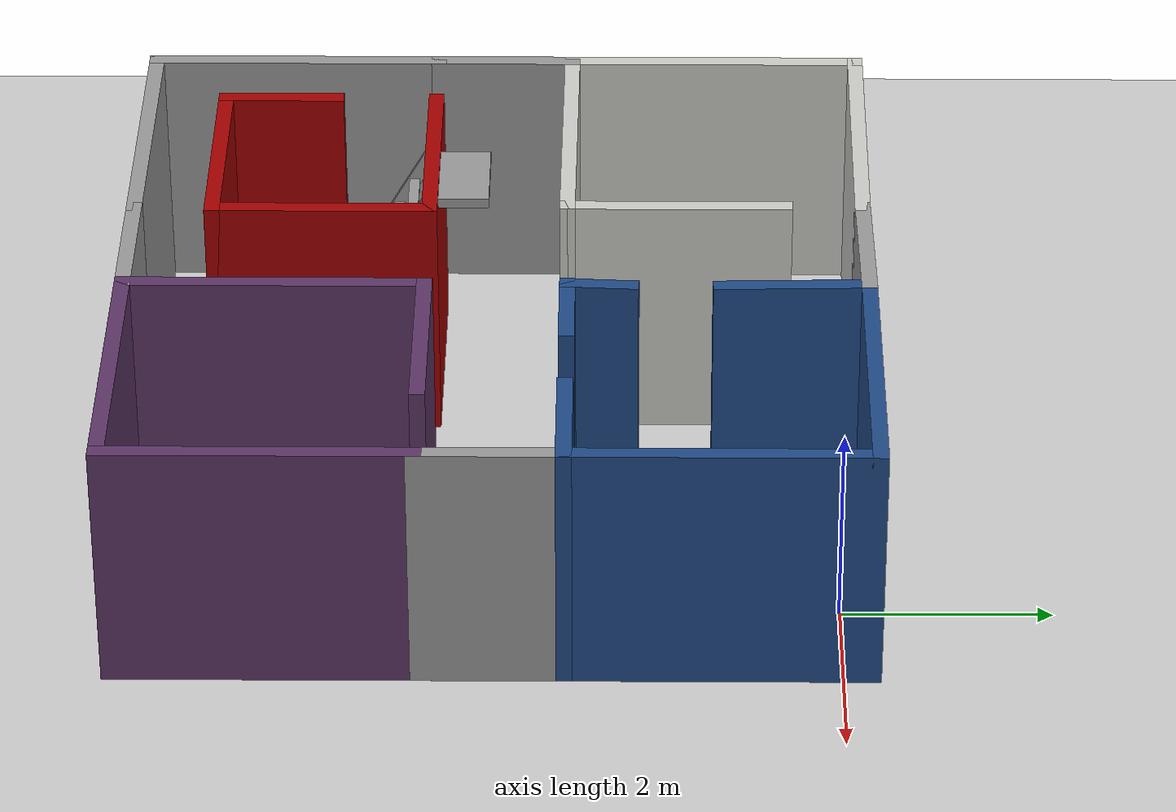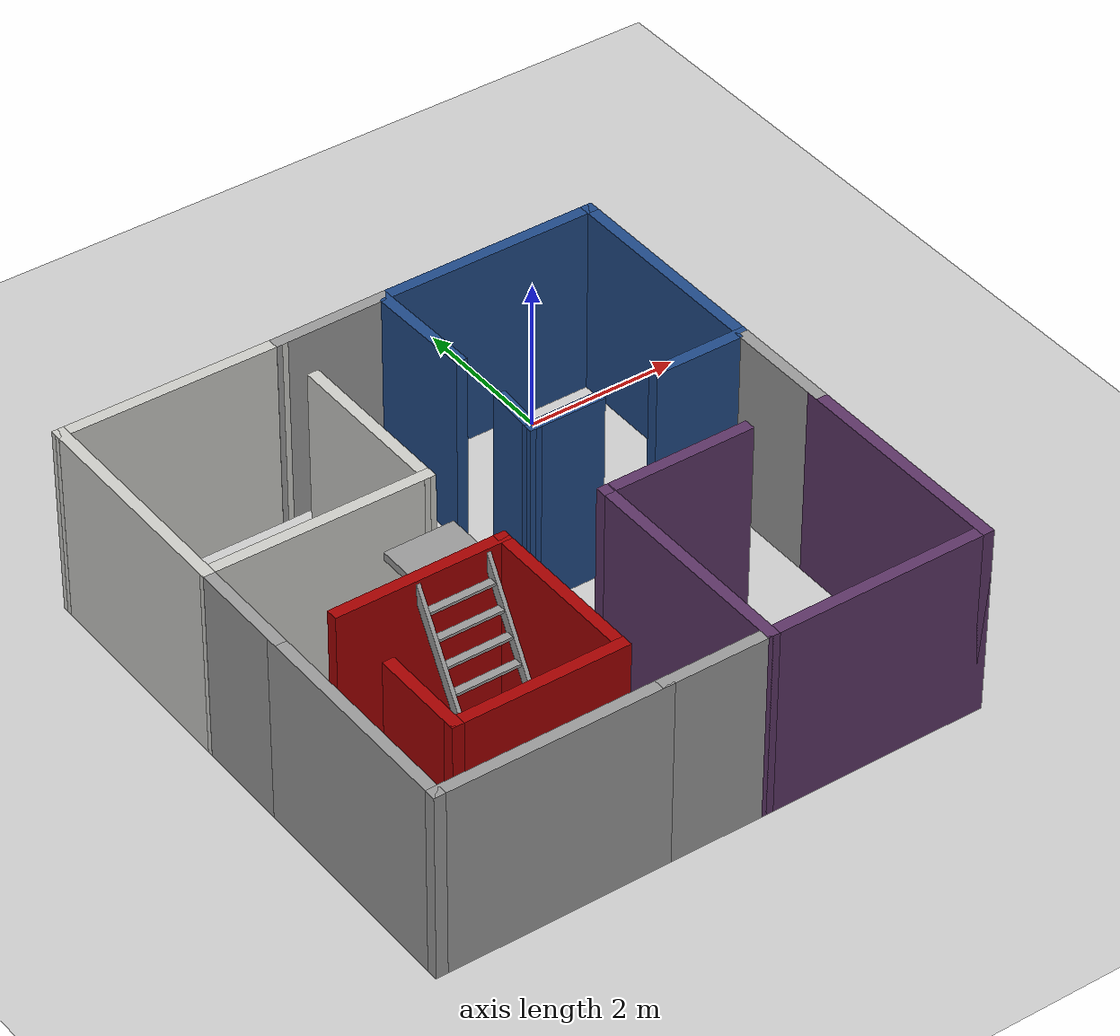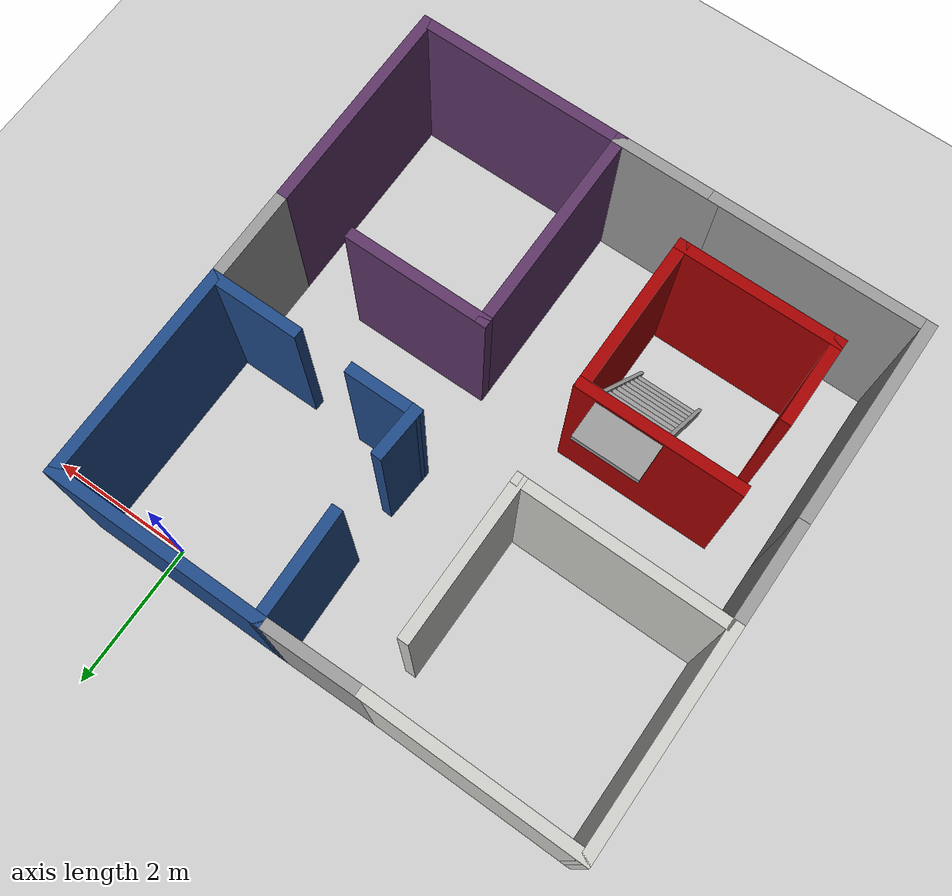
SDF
<sdf version="1.6">
 <world name="default">
  <model name="apartment">
   <link name="Wall_20">
    <pose>-3.52477 2.09918 0 0 0 -1.5708</pose>
    <visual name="Wall_20_Visual">
     <pose>0 0 1.25 0 -0 0</pose>
     <geometry><box><size>3 0.15 2.5</size></box></geometry>
     <material>
      <script><uri>file://media/materials/scripts/gazebo.material</uri><name>Gazebo/CeilingTiled</name></script>
      <ambient>0.435294 0.796078 0.67451 1</ambient>
      <shader type="pixel"/>
     </material>
     <meta><layer>0</layer></meta>
    </visual>
    <collision name="Wall_20_Collision">
     <pose>0 0 1.25 0 -0 0</pose>
     <geometry><box><size>3 0.15 2.5</size></box></geometry>
     <surface>
      <friction>
       <ode><mu>1</mu><mu2>1</mu2><fdir1>0 0 0</fdir1><slip1>0</slip1><slip2>0</slip2></ode>
       <torsional>
        <coefficient>1</coefficient>
        <patch_radius>0</patch_radius>
        <surface_radius>0</surface_radius>
        <use_patch_radius>1</use_patch_radius>
        <ode><slip>0</slip></ode>
       </torsional>
      </friction>
      <bounce><restitution_coefficient>0</restitution_coefficient><threshold>1e+06</threshold></bounce>
      <contact>
       <collide_without_contact>0</collide_without_contact>
       <collide_without_contact_bitmask>1</collide_without_contact_bitmask>
       <collide_bitmask>1</collide_bitmask>
       <ode>
        <soft_cfm>0</soft_cfm>
        <soft_erp>0.2</soft_erp>
        <kp>1e+13</kp>
        <kd>1</kd>
        <max_vel>0.01</max_vel>
        <min_depth>0</min_depth>
       </ode>
       <bullet>
        <split_impulse>1</split_impulse>
        <split_impulse_penetration_threshold>-0.01</split_impulse_penetration_threshold>
        <soft_cfm>0</soft_cfm>
        <soft_erp>0.2</soft_erp>
        <kp>1e+13</kp>
        <kd>1</kd>
       </bullet>
      </contact>
     </surface>
    </collision>
   </link>
   <link name="Wall_21">
    <pose>-2.126 0.665439 0 0 0 -0.006252</pose>
    <visual name="Wall_21_Visual">
     <pose>0 0 1.25 0 -0 0</pose>
     <geometry><box><size>2.94758 0.15 2.5</size></box></geometry>
     <material>
      <script><uri>file://media/materials/scripts/gazebo.material</uri><name>Gazebo/CeilingTiled</name></script>
      <ambient>0.435294 0.796078 0.67451 1</ambient>
      <shader type="pixel"/>
     </material>
     <meta><layer>0</layer></meta>
    </visual>
    <collision name="Wall_21_Collision">
     <pose>0 0 1.25 0 -0 0</pose>
     <geometry><box><size>2.94758 0.15 2.5</size></box></geometry>
     <surface>
      <friction>
       <ode><mu>1</mu><mu2>1</mu2><fdir1>0 0 0</fdir1><slip1>0</slip1><slip2>0</slip2></ode>
       <torsional>
        <coefficient>1</coefficient>
        <patch_radius>0</patch_radius>
        <surface_radius>0</surface_radius>
        <use_patch_radius>1</use_patch_radius>
        <ode><slip>0</slip></ode>
       </torsional>
      </friction>
      <bounce><restitution_coefficient>0</restitution_coefficient><threshold>1e+06</threshold></bounce>
      <contact>
       <collide_without_contact>0</collide_without_contact>
       <collide_without_contact_bitmask>1</collide_without_contact_bitmask>
       <collide_bitmask>1</collide_bitmask>
       <ode>
        <soft_cfm>0</soft_cfm>
        <soft_erp>0.2</soft_erp>
        <kp>1e+13</kp>
        <kd>1</kd>
        <max_vel>0.01</max_vel>
        <min_depth>0</min_depth>
       </ode>
       <bullet>
        <split_impulse>1</split_impulse>
        <split_impulse_penetration_threshold>-0.01</split_impulse_penetration_threshold>
        <soft_cfm>0</soft_cfm>
        <soft_erp>0.2</soft_erp>
        <kp>1e+13</kp>
        <kd>1</kd>
       </bullet>
      </contact>
     </surface>
    </collision>
   </link>
   <link name="Wall_23">
    <pose>-2.126 3.51544 0 0 -0 3.13534</pose>
    <visual name="Wall_23_Visual">
     <pose>0 0 1.25 0 -0 0</pose>
     <geometry><box><size>2.94758 0.15 2.5</size></box></geometry>
     <material>
      <script><uri>file://media/materials/scripts/gazebo.material</uri><name>Gazebo/CeilingTiled</name></script>
      <ambient>0.435294 0.796078 0.67451 1</ambient>
      <shader type="pixel"/>
     </material>
     <meta><layer>0</layer></meta>
    </visual>
    <collision name="Wall_23_Collision">
     <pose>0 0 1.25 0 -0 0</pose>
     <geometry><box><size>2.94758 0.15 2.5</size></box></geometry>
     <surface>
      <friction>
       <ode><mu>1</mu><mu2>1</mu2><fdir1>0 0 0</fdir1><slip1>0</slip1><slip2>0</slip2></ode>
       <torsional>
        <coefficient>1</coefficient>
        <patch_radius>0</patch_radius>
        <surface_radius>0</surface_radius>
        <use_patch_radius>1</use_patch_radius>
        <ode><slip>0</slip></ode>
       </torsional>
      </friction>
      <bounce><restitution_coefficient>0</restitution_coefficient><threshold>1e+06</threshold></bounce>
      <contact>
       <collide_without_contact>0</collide_without_contact>
       <collide_without_contact_bitmask>1</collide_without_contact_bitmask>
       <collide_bitmask>1</collide_bitmask>
       <ode>
        <soft_cfm>0</soft_cfm>
        <soft_erp>0.2</soft_erp>
        <kp>1e+13</kp>
        <kd>1</kd>
        <max_vel>0.01</max_vel>
        <min_depth>0</min_depth>
       </ode>
       <bullet>
        <split_impulse>1</split_impulse>
        <split_impulse_penetration_threshold>-0.01</split_impulse_penetration_threshold>
        <soft_cfm>0</soft_cfm>
        <soft_erp>0.2</soft_erp>
        <kp>1e+13</kp>
        <kd>1</kd>
       </bullet>
      </contact>
     </surface>
    </collision>
   </link>
   <link name="Wall_25">
    <pose>-3.52477 -0.000816 0 0 0 -1.5708</pose>
    <visual name="Wall_25_Visual">
     <pose>0 0 1.25 0 -0 0</pose>
     <geometry><box><size>1.5 0.15 2.5</size></box></geometry>
     <material>
      <script><uri>file://media/materials/scripts/gazebo.material</uri><name>Gazebo/Grey</name></script>
      <ambient>0.729412 0.741176 0.713726 1</ambient>
      <shader type="pixel"/>
     </material>
     <meta><layer>0</layer></meta>
    </visual>
    <collision name="Wall_25_Collision">
     <pose>0 0 1.25 0 -0 0</pose>
     <geometry><box><size>1.5 0.15 2.5</size></box></geometry>
     <surface>
      <friction>
       <ode><mu>1</mu><mu2>1</mu2><fdir1>0 0 0</fdir1><slip1>0</slip1><slip2>0</slip2></ode>
       <torsional>
        <coefficient>1</coefficient>
        <patch_radius>0</patch_radius>
        <surface_radius>0</surface_radius>
        <use_patch_radius>1</use_patch_radius>
        <ode><slip>0</slip></ode>
       </torsional>
      </friction>
      <bounce><restitution_coefficient>0</restitution_coefficient><threshold>1e+06</threshold></bounce>
      <contact>
       <collide_without_contact>0</collide_without_contact>
       <collide_without_contact_bitmask>1</collide_without_contact_bitmask>
       <collide_bitmask>1</collide_bitmask>
       <ode>
        <soft_cfm>0</soft_cfm>
        <soft_erp>0.2</soft_erp>
        <kp>1e+13</kp>
        <kd>1</kd>
        <max_vel>0.01</max_vel>
        <min_depth>0</min_depth>
       </ode>
       <bullet>
        <split_impulse>1</split_impulse>
        <split_impulse_penetration_threshold>-0.01</split_impulse_penetration_threshold>
        <soft_cfm>0</soft_cfm>
        <soft_erp>0.2</soft_erp>
        <kp>1e+13</kp>
        <kd>1</kd>
       </bullet>
      </contact>
     </surface>
    </collision>
   </link>
   <link name="Wall_29">
    <pose>-2.09977 -3.52582 0 0 -0 3.14159</pose>
    <visual name="Wall_29_Visual">
     <pose>0 0 1.25 0 -0 0</pose>
     <geometry><box><size>3 0.15 2.5</size></box></geometry>
     <material>
      <script><uri>file://media/materials/scripts/gazebo.material</uri><name>Gazebo/Grey</name></script>
      <ambient>0.729412 0.741176 0.713726 1</ambient>
      <shader type="pixel"/>
     </material>
     <meta><layer>0</layer></meta>
    </visual>
    <collision name="Wall_29_Collision">
     <pose>0 0 1.25 0 -0 0</pose>
     <geometry><box><size>3 0.15 2.5</size></box></geometry>
     <surface>
      <friction>
       <ode><mu>1</mu><mu2>1</mu2><fdir1>0 0 0</fdir1><slip1>0</slip1><slip2>0</slip2></ode>
       <torsional>
        <coefficient>1</coefficient>
        <patch_radius>0</patch_radius>
        <surface_radius>0</surface_radius>
        <use_patch_radius>1</use_patch_radius>
        <ode><slip>0</slip></ode>
       </torsional>
      </friction>
      <bounce><restitution_coefficient>0</restitution_coefficient><threshold>1e+06</threshold></bounce>
      <contact>
       <collide_without_contact>0</collide_without_contact>
       <collide_without_contact_bitmask>1</collide_without_contact_bitmask>
       <collide_bitmask>1</collide_bitmask>
       <ode>
        <soft_cfm>0</soft_cfm>
        <soft_erp>0.2</soft_erp>
        <kp>1e+13</kp>
        <kd>1</kd>
        <max_vel>0.01</max_vel>
        <min_depth>0</min_depth>
       </ode>
       <bullet>
        <split_impulse>1</split_impulse>
        <split_impulse_penetration_threshold>-0.01</split_impulse_penetration_threshold>
        <soft_cfm>0</soft_cfm>
        <soft_erp>0.2</soft_erp>
        <kp>1e+13</kp>
        <kd>1</kd>
       </bullet>
      </contact>
     </surface>
    </collision>
   </link>
   <link name="Wall_30">
    <pose>-3.52477 -2.10082 0 0 -0 1.5708</pose>
    <visual name="Wall_30_Visual">
     <pose>0 0 1.25 0 -0 0</pose>
     <geometry><box><size>3 0.15 2.5</size></box></geometry>
     <material>
      <script><uri>file://media/materials/scripts/gazebo.material</uri><name>Gazebo/Grey</name></script>
      <ambient>0.729412 0.741176 0.713726 1</ambient>
      <shader type="pixel"/>
     </material>
     <meta><layer>0</layer></meta>
    </visual>
    <collision name="Wall_30_Collision">
     <pose>0 0 1.25 0 -0 0</pose>
     <geometry><box><size>3 0.15 2.5</size></box></geometry>
     <surface>
      <friction>
       <ode><mu>1</mu><mu2>1</mu2><fdir1>0 0 0</fdir1><slip1>0</slip1><slip2>0</slip2></ode>
       <torsional>
        <coefficient>1</coefficient>
        <patch_radius>0</patch_radius>
        <surface_radius>0</surface_radius>
        <use_patch_radius>1</use_patch_radius>
        <ode><slip>0</slip></ode>
       </torsional>
      </friction>
      <bounce><restitution_coefficient>0</restitution_coefficient><threshold>1e+06</threshold></bounce>
      <contact>
       <collide_without_contact>0</collide_without_contact>
       <collide_without_contact_bitmask>1</collide_without_contact_bitmask>
       <collide_bitmask>1</collide_bitmask>
       <ode>
        <soft_cfm>0</soft_cfm>
        <soft_erp>0.2</soft_erp>
        <kp>1e+13</kp>
        <kd>1</kd>
        <max_vel>0.01</max_vel>
        <min_depth>0</min_depth>
       </ode>
       <bullet>
        <split_impulse>1</split_impulse>
        <split_impulse_penetration_threshold>-0.01</split_impulse_penetration_threshold>
        <soft_cfm>0</soft_cfm>
        <soft_erp>0.2</soft_erp>
        <kp>1e+13</kp>
        <kd>1</kd>
       </bullet>
      </contact>
     </surface>
    </collision>
   </link>
   <link name="Wall_32">
    <pose>-0.026002 3.51544 0 0 -0 0.01247</pose>
    <visual name="Wall_32_Visual">
     <pose>0 0 1.25 0 -0 0</pose>
     <geometry><box><size>1.55258 0.15 2.5</size></box></geometry>
     <material>
      <script><uri>file://media/materials/scripts/gazebo.material</uri><name>Gazebo/Grey</name></script>
      <ambient>0.729412 0.741176 0.713726 1</ambient>
      <shader type="pixel"/>
     </material>
     <meta><layer>0</layer></meta>
    </visual>
    <collision name="Wall_32_Collision">
     <pose>0 0 1.25 0 -0 0</pose>
     <geometry><box><size>1.55258 0.15 2.5</size></box></geometry>
     <surface>
      <friction>
       <ode><mu>1</mu><mu2>1</mu2><fdir1>0 0 0</fdir1><slip1>0</slip1><slip2>0</slip2></ode>
       <torsional>
        <coefficient>1</coefficient>
        <patch_radius>0</patch_radius>
        <surface_radius>0</surface_radius>
        <use_patch_radius>1</use_patch_radius>
        <ode><slip>0</slip></ode>
       </torsional>
      </friction>
      <bounce><restitution_coefficient>0</restitution_coefficient><threshold>1e+06</threshold></bounce>
      <contact>
       <collide_without_contact>0</collide_without_contact>
       <collide_without_contact_bitmask>1</collide_without_contact_bitmask>
       <collide_bitmask>1</collide_bitmask>
       <ode>
        <soft_cfm>0</soft_cfm>
        <soft_erp>0.2</soft_erp>
        <kp>1e+13</kp>
        <kd>1</kd>
        <max_vel>0.01</max_vel>
        <min_depth>0</min_depth>
       </ode>
       <bullet>
        <split_impulse>1</split_impulse>
        <split_impulse_penetration_threshold>-0.01</split_impulse_penetration_threshold>
        <soft_cfm>0</soft_cfm>
        <soft_erp>0.2</soft_erp>
        <kp>1e+13</kp>
        <kd>1</kd>
       </bullet>
      </contact>
     </surface>
    </collision>
   </link>
   <link name="Wall_33">
    <pose>2.10023 3.52418 0 0 -0 0</pose>
    <visual name="Wall_33_Visual">
     <pose>0 0 1.25 0 -0 0</pose>
     <geometry><box><size>3 0.15 2.5</size></box></geometry>
     <material>
      <script><uri>file://media/materials/scripts/gazebo.material</uri><name>Gazebo/Grey</name></script>
      <ambient>0.12549 0.290196 0.529412 1</ambient>
      <shader type="pixel"/>
     </material>
     <meta><layer>0</layer></meta>
    </visual>
    <collision name="Wall_33_Collision">
     <pose>0 0 1.25 0 -0 0</pose>
     <geometry><box><size>3 0.15 2.5</size></box></geometry>
     <surface>
      <friction>
       <ode><mu>1</mu><mu2>1</mu2><fdir1>0 0 0</fdir1><slip1>0</slip1><slip2>0</slip2></ode>
       <torsional>
        <coefficient>1</coefficient>
        <patch_radius>0</patch_radius>
        <surface_radius>0</surface_radius>
        <use_patch_radius>1</use_patch_radius>
        <ode><slip>0</slip></ode>
       </torsional>
      </friction>
      <bounce><restitution_coefficient>0</restitution_coefficient><threshold>1e+06</threshold></bounce>
      <contact>
       <collide_without_contact>0</collide_without_contact>
       <collide_without_contact_bitmask>1</collide_without_contact_bitmask>
       <collide_bitmask>1</collide_bitmask>
       <ode>
        <soft_cfm>0</soft_cfm>
        <soft_erp>0.2</soft_erp>
        <kp>1e+13</kp>
        <kd>1</kd>
        <max_vel>0.01</max_vel>
        <min_depth>0</min_depth>
       </ode>
       <bullet>
        <split_impulse>1</split_impulse>
        <split_impulse_penetration_threshold>-0.01</split_impulse_penetration_threshold>
        <soft_cfm>0</soft_cfm>
        <soft_erp>0.2</soft_erp>
        <kp>1e+13</kp>
        <kd>1</kd>
       </bullet>
      </contact>
     </surface>
    </collision>
   </link>
   <link name="Wall_34">
    <pose>3.52523 2.09918 0 0 0 -1.5708</pose>
    <visual name="Wall_34_Visual">
     <pose>0 0 1.25 0 -0 0</pose>
     <geometry><box><size>3 0.15 2.5</size></box></geometry>
     <material>
      <script><uri>file://media/materials/scripts/gazebo.material</uri><name>Gazebo/Grey</name></script>
      <ambient>0.12549 0.290196 0.529412 1</ambient>
      <shader type="pixel"/>
     </material>
     <meta><layer>0</layer></meta>
    </visual>
    <collision name="Wall_34_Collision">
     <pose>0 0 1.25 0 -0 0</pose>
     <geometry><box><size>3 0.15 2.5</size></box></geometry>
     <surface>
      <friction>
       <ode><mu>1</mu><mu2>1</mu2><fdir1>0 0 0</fdir1><slip1>0</slip1><slip2>0</slip2></ode>
       <torsional>
        <coefficient>1</coefficient>
        <patch_radius>0</patch_radius>
        <surface_radius>0</surface_radius>
        <use_patch_radius>1</use_patch_radius>
        <ode><slip>0</slip></ode>
       </torsional>
      </friction>
      <bounce><restitution_coefficient>0</restitution_coefficient><threshold>1e+06</threshold></bounce>
      <contact>
       <collide_without_contact>0</collide_without_contact>
       <collide_without_contact_bitmask>1</collide_without_contact_bitmask>
       <collide_bitmask>1</collide_bitmask>
       <ode>
        <soft_cfm>0</soft_cfm>
        <soft_erp>0.2</soft_erp>
        <kp>1e+13</kp>
        <kd>1</kd>
        <max_vel>0.01</max_vel>
        <min_depth>0</min_depth>
       </ode>
       <bullet>
        <split_impulse>1</split_impulse>
        <split_impulse_penetration_threshold>-0.01</split_impulse_penetration_threshold>
        <soft_cfm>0</soft_cfm>
        <soft_erp>0.2</soft_erp>
        <kp>1e+13</kp>
        <kd>1</kd>
       </bullet>
      </contact>
     </surface>
    </collision>
   </link>
   <link name="Wall_38">
    <pose>0.000234 -3.52582 0 0 -0 0</pose>
    <visual name="Wall_38_Visual">
     <pose>0 0 1.25 0 -0 0</pose>
     <geometry><box><size>1.5 0.15 2.5</size></box></geometry>
     <material>
      <script><uri>file://media/materials/scripts/gazebo.material</uri><name>Gazebo/Grey</name></script>
      <ambient>0.729412 0.741176 0.713726 1</ambient>
      <shader type="pixel"/>
     </material>
     <meta><layer>0</layer></meta>
    </visual>
    <collision name="Wall_38_Collision">
     <pose>0 0 1.25 0 -0 0</pose>
     <geometry><box><size>1.5 0.15 2.5</size></box></geometry>
     <surface>
      <friction>
       <ode><mu>1</mu><mu2>1</mu2><fdir1>0 0 0</fdir1><slip1>0</slip1><slip2>0</slip2></ode>
       <torsional>
        <coefficient>1</coefficient>
        <patch_radius>0</patch_radius>
        <surface_radius>0</surface_radius>
        <use_patch_radius>1</use_patch_radius>
        <ode><slip>0</slip></ode>
       </torsional>
      </friction>
      <bounce><restitution_coefficient>0</restitution_coefficient><threshold>1e+06</threshold></bounce>
      <contact>
       <collide_without_contact>0</collide_without_contact>
       <collide_without_contact_bitmask>1</collide_without_contact_bitmask>
       <collide_bitmask>1</collide_bitmask>
       <ode>
        <soft_cfm>0</soft_cfm>
        <soft_erp>0.2</soft_erp>
        <kp>1e+13</kp>
        <kd>1</kd>
        <max_vel>0.01</max_vel>
        <min_depth>0</min_depth>
       </ode>
       <bullet>
        <split_impulse>1</split_impulse>
        <split_impulse_penetration_threshold>-0.01</split_impulse_penetration_threshold>
        <soft_cfm>0</soft_cfm>
        <soft_erp>0.2</soft_erp>
        <kp>1e+13</kp>
        <kd>1</kd>
       </bullet>
      </contact>
     </surface>
    </collision>
   </link>
   <link name="Wall_39">
    <pose>2.10023 -3.52582 0 0 -0 0</pose>
    <visual name="Wall_39_Visual">
     <pose>0 0 1.25 0 -0 0</pose>
     <geometry><box><size>3 0.15 2.5</size></box></geometry>
     <material>
      <script><uri>file://media/materials/scripts/gazebo.material</uri><name>Gazebo/Grey</name></script>
      <ambient>0.360784 0.207843 0.4 1</ambient>
      <shader type="pixel"/>
     </material>
     <meta><layer>0</layer></meta>
    </visual>
    <collision name="Wall_39_Collision">
     <pose>0 0 1.25 0 -0 0</pose>
     <geometry><box><size>3 0.15 2.5</size></box></geometry>
     <surface>
      <friction>
       <ode><mu>1</mu><mu2>1</mu2><fdir1>0 0 0</fdir1><slip1>0</slip1><slip2>0</slip2></ode>
       <torsional>
        <coefficient>1</coefficient>
        <patch_radius>0</patch_radius>
        <surface_radius>0</surface_radius>
        <use_patch_radius>1</use_patch_radius>
        <ode><slip>0</slip></ode>
       </torsional>
      </friction>
      <bounce><restitution_coefficient>0</restitution_coefficient><threshold>1e+06</threshold></bounce>
      <contact>
       <collide_without_contact>0</collide_without_contact>
       <collide_without_contact_bitmask>1</collide_without_contact_bitmask>
       <collide_bitmask>1</collide_bitmask>
       <ode>
        <soft_cfm>0</soft_cfm>
        <soft_erp>0.2</soft_erp>
        <kp>1e+13</kp>
        <kd>1</kd>
        <max_vel>0.01</max_vel>
        <min_depth>0</min_depth>
       </ode>
       <bullet>
        <split_impulse>1</split_impulse>
        <split_impulse_penetration_threshold>-0.01</split_impulse_penetration_threshold>
        <soft_cfm>0</soft_cfm>
        <soft_erp>0.2</soft_erp>
        <kp>1e+13</kp>
        <kd>1</kd>
       </bullet>
      </contact>
     </surface>
    </collision>
   </link>
   <link name="Wall_40">
    <pose>3.52523 -2.10082 0 0 -0 1.5708</pose>
    <visual name="Wall_40_Visual">
     <pose>0 0 1.25 0 -0 0</pose>
     <geometry><box><size>3 0.15 2.5</size></box></geometry>
     <material>
      <script><uri>file://media/materials/scripts/gazebo.material</uri><name>Gazebo/Grey</name></script>
      <ambient>0.360784 0.207843 0.4 1</ambient>
      <shader type="pixel"/>
     </material>
     <meta><layer>0</layer></meta>
    </visual>
    <collision name="Wall_40_Collision">
     <pose>0 0 1.25 0 -0 0</pose>
     <geometry><box><size>3 0.15 2.5</size></box></geometry>
     <surface>
      <friction>
       <ode><mu>1</mu><mu2>1</mu2><fdir1>0 0 0</fdir1><slip1>0</slip1><slip2>0</slip2></ode>
       <torsional>
        <coefficient>1</coefficient>
        <patch_radius>0</patch_radius>
        <surface_radius>0</surface_radius>
        <use_patch_radius>1</use_patch_radius>
        <ode><slip>0</slip></ode>
       </torsional>
      </friction>
      <bounce><restitution_coefficient>0</restitution_coefficient><threshold>1e+06</threshold></bounce>
      <contact>
       <collide_without_contact>0</collide_without_contact>
       <collide_without_contact_bitmask>1</collide_without_contact_bitmask>
       <collide_bitmask>1</collide_bitmask>
       <ode>
        <soft_cfm>0</soft_cfm>
        <soft_erp>0.2</soft_erp>
        <kp>1e+13</kp>
        <kd>1</kd>
        <max_vel>0.01</max_vel>
        <min_depth>0</min_depth>
       </ode>
       <bullet>
        <split_impulse>1</split_impulse>
        <split_impulse_penetration_threshold>-0.01</split_impulse_penetration_threshold>
        <soft_cfm>0</soft_cfm>
        <soft_erp>0.2</soft_erp>
        <kp>1e+13</kp>
        <kd>1</kd>
       </bullet>
      </contact>
     </surface>
    </collision>
   </link>
   <link name="Wall_42">
    <pose>0.675234 -2.10082 0 0 0 -1.5708</pose>
    <visual name="Wall_42_Visual">
     <pose>0 0 1.25 0 -0 0</pose>
     <geometry><box><size>3 0.15 2.5</size></box></geometry>
     <material>
      <script><uri>file://media/materials/scripts/gazebo.material</uri><name>Gazebo/Grey</name></script>
      <ambient>0.360784 0.207843 0.4 1</ambient>
      <shader type="pixel"/>
     </material>
     <meta><layer>0</layer></meta>
    </visual>
    <collision name="Wall_42_Collision">
     <pose>0 0 1.25 0 -0 0</pose>
     <geometry><box><size>3 0.15 2.5</size></box></geometry>
     <surface>
      <friction>
       <ode><mu>1</mu><mu2>1</mu2><fdir1>0 0 0</fdir1><slip1>0</slip1><slip2>0</slip2></ode>
       <torsional>
        <coefficient>1</coefficient>
        <patch_radius>0</patch_radius>
        <surface_radius>0</surface_radius>
        <use_patch_radius>1</use_patch_radius>
        <ode><slip>0</slip></ode>
       </torsional>
      </friction>
      <bounce><restitution_coefficient>0</restitution_coefficient><threshold>1e+06</threshold></bounce>
      <contact>
       <collide_without_contact>0</collide_without_contact>
       <collide_without_contact_bitmask>1</collide_without_contact_bitmask>
       <collide_bitmask>1</collide_bitmask>
       <ode>
        <soft_cfm>0</soft_cfm>
        <soft_erp>0.2</soft_erp>
        <kp>1e+13</kp>
        <kd>1</kd>
        <max_vel>0.01</max_vel>
        <min_depth>0</min_depth>
       </ode>
       <bullet>
        <split_impulse>1</split_impulse>
        <split_impulse_penetration_threshold>-0.01</split_impulse_penetration_threshold>
        <soft_cfm>0</soft_cfm>
        <soft_erp>0.2</soft_erp>
        <kp>1e+13</kp>
        <kd>1</kd>
       </bullet>
      </contact>
     </surface>
    </collision>
   </link>
   <link name="Wall_44">
    <pose>3.52523 -0.000816 0 0 -0 1.5708</pose>
    <visual name="Wall_44_Visual">
     <pose>0 0 1.25 0 -0 0</pose>
     <geometry><box><size>1.5 0.15 2.5</size></box></geometry>
     <material>
      <script><uri>file://media/materials/scripts/gazebo.material</uri><name>Gazebo/Grey</name></script>
      <ambient>0.729412 0.741176 0.713726 1</ambient>
      <shader type="pixel"/>
     </material>
     <meta><layer>0</layer></meta>
    </visual>
    <collision name="Wall_44_Collision">
     <pose>0 0 1.25 0 -0 0</pose>
     <geometry><box><size>1.5 0.15 2.5</size></box></geometry>
     <surface>
      <friction>
       <ode><mu>1</mu><mu2>1</mu2><fdir1>0 0 0</fdir1><slip1>0</slip1><slip2>0</slip2></ode>
       <torsional>
        <coefficient>1</coefficient>
        <patch_radius>0</patch_radius>
        <surface_radius>0</surface_radius>
        <use_patch_radius>1</use_patch_radius>
        <ode><slip>0</slip></ode>
       </torsional>
      </friction>
      <bounce><restitution_coefficient>0</restitution_coefficient><threshold>1e+06</threshold></bounce>
      <contact>
       <collide_without_contact>0</collide_without_contact>
       <collide_without_contact_bitmask>1</collide_without_contact_bitmask>
       <collide_bitmask>1</collide_bitmask>
       <ode>
        <soft_cfm>0</soft_cfm>
        <soft_erp>0.2</soft_erp>
        <kp>1e+13</kp>
        <kd>1</kd>
        <max_vel>0.01</max_vel>
        <min_depth>0</min_depth>
       </ode>
       <bullet>
        <split_impulse>1</split_impulse>
        <split_impulse_penetration_threshold>-0.01</split_impulse_penetration_threshold>
        <soft_cfm>0</soft_cfm>
        <soft_erp>0.2</soft_erp>
        <kp>1e+13</kp>
        <kd>1</kd>
       </bullet>
      </contact>
     </surface>
    </collision>
   </link>
   <link name="Wall_46">
    <pose>1.60023 -0.675816 0 0 -0 0</pose>
    <visual name="Wall_46_Visual">
     <pose>0 0 1.25 0 -0 0</pose>
     <geometry><box><size>2 0.15 2.5</size></box></geometry>
     <material>
      <script><uri>file://media/materials/scripts/gazebo.material</uri><name>Gazebo/Grey</name></script>
      <ambient>0.360784 0.207843 0.4 1</ambient>
      <shader type="pixel"/>
     </material>
     <meta><layer>0</layer></meta>
    </visual>
    <collision name="Wall_46_Collision">
     <pose>0 0 1.25 0 -0 0</pose>
     <geometry><box><size>2 0.15 2.5</size></box></geometry>
     <surface>
      <friction>
       <ode><mu>1</mu><mu2>1</mu2><fdir1>0 0 0</fdir1><slip1>0</slip1><slip2>0</slip2></ode>
       <torsional>
        <coefficient>1</coefficient>
        <patch_radius>0</patch_radius>
        <surface_radius>0</surface_radius>
        <use_patch_radius>1</use_patch_radius>
        <ode><slip>0</slip></ode>
       </torsional>
      </friction>
      <bounce><restitution_coefficient>0</restitution_coefficient><threshold>1e+06</threshold></bounce>
      <contact>
       <collide_without_contact>0</collide_without_contact>
       <collide_without_contact_bitmask>1</collide_without_contact_bitmask>
       <collide_bitmask>1</collide_bitmask>
       <ode>
        <soft_cfm>0</soft_cfm>
        <soft_erp>0.2</soft_erp>
        <kp>1e+13</kp>
        <kd>1</kd>
        <max_vel>0.01</max_vel>
        <min_depth>0</min_depth>
       </ode>
       <bullet>
        <split_impulse>1</split_impulse>
        <split_impulse_penetration_threshold>-0.01</split_impulse_penetration_threshold>
        <soft_cfm>0</soft_cfm>
        <soft_erp>0.2</soft_erp>
        <kp>1e+13</kp>
        <kd>1</kd>
       </bullet>
      </contact>
     </surface>
    </collision>
   </link>
   <link name="Wall_48">
    <pose>1.10023 0.674184 0 0 -0 0</pose>
    <visual name="Wall_48_Visual">
     <pose>0 0 1.25 0 -0 0</pose>
     <geometry><box><size>1 0.15 2.5</size></box></geometry>
     <material>
      <script><uri>file://media/materials/scripts/gazebo.material</uri><name>Gazebo/Grey</name></script>
      <ambient>0.12549 0.290196 0.529412 1</ambient>
      <shader type="pixel"/>
     </material>
     <meta><layer>0</layer></meta>
    </visual>
    <collision name="Wall_48_Collision">
     <pose>0 0 1.25 0 -0 0</pose>
     <geometry><box><size>1 0.15 2.5</size></box></geometry>
     <surface>
      <friction>
       <ode><mu>1</mu><mu2>1</mu2><fdir1>0 0 0</fdir1><slip1>0</slip1><slip2>0</slip2></ode>
       <torsional>
        <coefficient>1</coefficient>
        <patch_radius>0</patch_radius>
        <surface_radius>0</surface_radius>
        <use_patch_radius>1</use_patch_radius>
        <ode><slip>0</slip></ode>
       </torsional>
      </friction>
      <bounce><restitution_coefficient>0</restitution_coefficient><threshold>1e+06</threshold></bounce>
      <contact>
       <collide_without_contact>0</collide_without_contact>
       <collide_without_contact_bitmask>1</collide_without_contact_bitmask>
       <collide_bitmask>1</collide_bitmask>
       <ode>
        <soft_cfm>0</soft_cfm>
        <soft_erp>0.2</soft_erp>
        <kp>1e+13</kp>
        <kd>1</kd>
        <max_vel>0.01</max_vel>
        <min_depth>0</min_depth>
       </ode>
       <bullet>
        <split_impulse>1</split_impulse>
        <split_impulse_penetration_threshold>-0.01</split_impulse_penetration_threshold>
        <soft_cfm>0</soft_cfm>
        <soft_erp>0.2</soft_erp>
        <kp>1e+13</kp>
        <kd>1</kd>
       </bullet>
      </contact>
     </surface>
    </collision>
   </link>
   <link name="Wall_51">
    <pose>2.95023 0.674184 0 0 -0 0</pose>
    <visual name="Wall_51_Visual">
     <pose>0 0 1.25 0 -0 0</pose>
     <geometry><box><size>1.3 0.15 2.5</size></box></geometry>
     <material>
      <script><uri>file://media/materials/scripts/gazebo.material</uri><name>Gazebo/Grey</name></script>
      <ambient>0.12549 0.290196 0.529412 1</ambient>
      <shader type="pixel"/>
     </material>
     <meta><layer>0</layer></meta>
    </visual>
    <collision name="Wall_51_Collision">
     <pose>0 0 1.25 0 -0 0</pose>
     <geometry><box><size>1.3 0.15 2.5</size></box></geometry>
     <surface>
      <friction>
       <ode><mu>1</mu><mu2>1</mu2><fdir1>0 0 0</fdir1><slip1>0</slip1><slip2>0</slip2></ode>
       <torsional>
        <coefficient>1</coefficient>
        <patch_radius>0</patch_radius>
        <surface_radius>0</surface_radius>
        <use_patch_radius>1</use_patch_radius>
        <ode><slip>0</slip></ode>
       </torsional>
      </friction>
      <bounce><restitution_coefficient>0</restitution_coefficient><threshold>1e+06</threshold></bounce>
      <contact>
       <collide_without_contact>0</collide_without_contact>
       <collide_without_contact_bitmask>1</collide_without_contact_bitmask>
       <collide_bitmask>1</collide_bitmask>
       <ode>
        <soft_cfm>0</soft_cfm>
        <soft_erp>0.2</soft_erp>
        <kp>1e+13</kp>
        <kd>1</kd>
        <max_vel>0.01</max_vel>
        <min_depth>0</min_depth>
       </ode>
       <bullet>
        <split_impulse>1</split_impulse>
        <split_impulse_penetration_threshold>-0.01</split_impulse_penetration_threshold>
        <soft_cfm>0</soft_cfm>
        <soft_erp>0.2</soft_erp>
        <kp>1e+13</kp>
        <kd>1</kd>
       </bullet>
      </contact>
     </surface>
    </collision>
   </link>
   <link name="Wall_53">
    <pose>-0.727237 1.70669 0 0 -0 1.5708</pose>
    <visual name="Wall_53_Visual">
     <pose>0 0 1.25 0 -0 0</pose>
     <geometry><box><size>2.25 0.15 2.5</size></box></geometry>
     <material>
      <script><uri>file://media/materials/scripts/gazebo.material</uri><name>Gazebo/CeilingTiled</name></script>
      <ambient>0.435294 0.796078 0.67451 1</ambient>
      <shader type="pixel"/>
     </material>
     <meta><layer>0</layer></meta>
    </visual>
    <collision name="Wall_53_Collision">
     <pose>0 0 1.25 0 -0 0</pose>
     <geometry><box><size>2.25 0.15 2.5</size></box></geometry>
     <surface>
      <friction>
       <ode><mu>1</mu><mu2>1</mu2><fdir1>0 0 0</fdir1><slip1>0</slip1><slip2>0</slip2></ode>
       <torsional>
        <coefficient>1</coefficient>
        <patch_radius>0</patch_radius>
        <surface_radius>0</surface_radius>
        <use_patch_radius>1</use_patch_radius>
        <ode><slip>0</slip></ode>
       </torsional>
      </friction>
      <bounce><restitution_coefficient>0</restitution_coefficient><threshold>1e+06</threshold></bounce>
      <contact>
       <collide_without_contact>0</collide_without_contact>
       <collide_without_contact_bitmask>1</collide_without_contact_bitmask>
       <collide_bitmask>1</collide_bitmask>
       <ode>
        <soft_cfm>0</soft_cfm>
        <soft_erp>0.2</soft_erp>
        <kp>1e+13</kp>
        <kd>1</kd>
        <max_vel>0.01</max_vel>
        <min_depth>0</min_depth>
       </ode>
       <bullet>
        <split_impulse>1</split_impulse>
        <split_impulse_penetration_threshold>-0.01</split_impulse_penetration_threshold>
        <soft_cfm>0</soft_cfm>
        <soft_erp>0.2</soft_erp>
        <kp>1e+13</kp>
        <kd>1</kd>
       </bullet>
      </contact>
     </surface>
    </collision>
   </link>
   <link name="Wall_55">
    <pose>0.692724 0.974184 0 0 -0 1.51256</pose>
    <visual name="Wall_55_Visual">
     <pose>0 0 1.25 0 -0 0</pose>
     <geometry><box><size>0.751019 0.15 2.5</size></box></geometry>
     <material>
      <script><uri>file://media/materials/scripts/gazebo.material</uri><name>Gazebo/Grey</name></script>
      <ambient>0.12549 0.290196 0.529412 1</ambient>
      <shader type="pixel"/>
     </material>
     <meta><layer>0</layer></meta>
    </visual>
    <collision name="Wall_55_Collision">
     <pose>0 0 1.25 0 -0 0</pose>
     <geometry><box><size>0.751019 0.15 2.5</size></box></geometry>
     <surface>
      <friction>
       <ode><mu>1</mu><mu2>1</mu2><fdir1>0 0 0</fdir1><slip1>0</slip1><slip2>0</slip2></ode>
       <torsional>
        <coefficient>1</coefficient>
        <patch_radius>0</patch_radius>
        <surface_radius>0</surface_radius>
        <use_patch_radius>1</use_patch_radius>
        <ode><slip>0</slip></ode>
       </torsional>
      </friction>
      <bounce><restitution_coefficient>0</restitution_coefficient><threshold>1e+06</threshold></bounce>
      <contact>
       <collide_without_contact>0</collide_without_contact>
       <collide_without_contact_bitmask>1</collide_without_contact_bitmask>
       <collide_bitmask>1</collide_bitmask>
       <ode>
        <soft_cfm>0</soft_cfm>
        <soft_erp>0.2</soft_erp>
        <kp>1e+13</kp>
        <kd>1</kd>
        <max_vel>0.01</max_vel>
        <min_depth>0</min_depth>
       </ode>
       <bullet>
        <split_impulse>1</split_impulse>
        <split_impulse_penetration_threshold>-0.01</split_impulse_penetration_threshold>
        <soft_cfm>0</soft_cfm>
        <soft_erp>0.2</soft_erp>
        <kp>1e+13</kp>
        <kd>1</kd>
       </bullet>
      </contact>
     </surface>
    </collision>
   </link>
   <link name="Wall_57">
    <pose>0.692724 2.82418 0 0 -0 1.59578</pose>
    <visual name="Wall_57_Visual">
     <pose>0 0 1.25 0 -0 0</pose>
     <geometry><box><size>1.55 0.15 2.5</size></box></geometry>
     <material>
      <script><uri>file://media/materials/scripts/gazebo.material</uri><name>Gazebo/Grey</name></script>
      <ambient>0.12549 0.290196 0.529412 1</ambient>
      <shader type="pixel"/>
     </material>
     <meta><layer>0</layer></meta>
    </visual>
    <collision name="Wall_57_Collision">
     <pose>0 0 1.25 0 -0 0</pose>
     <geometry><box><size>1.55 0.15 2.5</size></box></geometry>
     <surface>
      <friction>
       <ode><mu>1</mu><mu2>1</mu2><fdir1>0 0 0</fdir1><slip1>0</slip1><slip2>0</slip2></ode>
       <torsional>
        <coefficient>1</coefficient>
        <patch_radius>0</patch_radius>
        <surface_radius>0</surface_radius>
        <use_patch_radius>1</use_patch_radius>
        <ode><slip>0</slip></ode>
       </torsional>
      </friction>
      <bounce><restitution_coefficient>0</restitution_coefficient><threshold>1e+06</threshold></bounce>
      <contact>
       <collide_without_contact>0</collide_without_contact>
       <collide_without_contact_bitmask>1</collide_without_contact_bitmask>
       <collide_bitmask>1</collide_bitmask>
       <ode>
        <soft_cfm>0</soft_cfm>
        <soft_erp>0.2</soft_erp>
        <kp>1e+13</kp>
        <kd>1</kd>
        <max_vel>0.01</max_vel>
        <min_depth>0</min_depth>
       </ode>
       <bullet>
        <split_impulse>1</split_impulse>
        <split_impulse_penetration_threshold>-0.01</split_impulse_penetration_threshold>
        <soft_cfm>0</soft_cfm>
        <soft_erp>0.2</soft_erp>
        <kp>1e+13</kp>
        <kd>1</kd>
       </bullet>
      </contact>
     </surface>
    </collision>
   </link>
   <link name="Wall_59">
    <pose>-1.72477 -0.675816 0 0 -0 3.14159</pose>
    <visual name="Wall_59_Visual">
     <pose>0 0 1.25 0 -0 0</pose>
     <geometry><box><size>2.25 0.15 2.5</size></box></geometry>
     <material>
      <script><uri>file://media/materials/scripts/gazebo.material</uri><name>Gazebo/Grey</name></script>
      <ambient>0.643137 0 0 1</ambient>
      <shader type="pixel"/>
     </material>
     <meta><layer>0</layer></meta>
    </visual>
    <collision name="Wall_59_Collision">
     <pose>0 0 1.25 0 -0 0</pose>
     <geometry><box><size>2.25 0.15 2.5</size></box></geometry>
     <surface>
      <friction>
       <ode><mu>1</mu><mu2>1</mu2><fdir1>0 0 0</fdir1><slip1>0</slip1><slip2>0</slip2></ode>
       <torsional>
        <coefficient>1</coefficient>
        <patch_radius>0</patch_radius>
        <surface_radius>0</surface_radius>
        <use_patch_radius>1</use_patch_radius>
        <ode><slip>0</slip></ode>
       </torsional>
      </friction>
      <bounce><restitution_coefficient>0</restitution_coefficient><threshold>1e+06</threshold></bounce>
      <contact>
       <collide_without_contact>0</collide_without_contact>
       <collide_without_contact_bitmask>1</collide_without_contact_bitmask>
       <collide_bitmask>1</collide_bitmask>
       <ode>
        <soft_cfm>0</soft_cfm>
        <soft_erp>0.2</soft_erp>
        <kp>1e+13</kp>
        <kd>1</kd>
        <max_vel>0.01</max_vel>
        <min_depth>0</min_depth>
       </ode>
       <bullet>
        <split_impulse>1</split_impulse>
        <split_impulse_penetration_threshold>-0.01</split_impulse_penetration_threshold>
        <soft_cfm>0</soft_cfm>
        <soft_erp>0.2</soft_erp>
        <kp>1e+13</kp>
        <kd>1</kd>
       </bullet>
      </contact>
     </surface>
    </collision>
   </link>
   <link name="Wall_61">
    <pose>-0.674766 -1.72582 0 0 0 -1.5708</pose>
    <visual name="Wall_61_Visual">
     <pose>0 0 1.25 0 -0 0</pose>
     <geometry><box><size>2.25 0.15 2.5</size></box></geometry>
     <material>
      <script><uri>file://media/materials/scripts/gazebo.material</uri><name>Gazebo/Grey</name></script>
      <ambient>0.643137 0 0 1</ambient>
      <shader type="pixel"/>
     </material>
     <meta><layer>0</layer></meta>
    </visual>
    <collision name="Wall_61_Collision">
     <pose>0 0 1.25 0 -0 0</pose>
     <geometry><box><size>2.25 0.15 2.5</size></box></geometry>
     <surface>
      <friction>
       <ode><mu>1</mu><mu2>1</mu2><fdir1>0 0 0</fdir1><slip1>0</slip1><slip2>0</slip2></ode>
       <torsional>
        <coefficient>1</coefficient>
        <patch_radius>0</patch_radius>
        <surface_radius>0</surface_radius>
        <use_patch_radius>1</use_patch_radius>
        <ode><slip>0</slip></ode>
       </torsional>
      </friction>
      <bounce><restitution_coefficient>0</restitution_coefficient><threshold>1e+06</threshold></bounce>
      <contact>
       <collide_without_contact>0</collide_without_contact>
       <collide_without_contact_bitmask>1</collide_without_contact_bitmask>
       <collide_bitmask>1</collide_bitmask>
       <ode>
        <soft_cfm>0</soft_cfm>
        <soft_erp>0.2</soft_erp>
        <kp>1e+13</kp>
        <kd>1</kd>
        <max_vel>0.01</max_vel>
        <min_depth>0</min_depth>
       </ode>
       <bullet>
        <split_impulse>1</split_impulse>
        <split_impulse_penetration_threshold>-0.01</split_impulse_penetration_threshold>
        <soft_cfm>0</soft_cfm>
        <soft_erp>0.2</soft_erp>
        <kp>1e+13</kp>
        <kd>1</kd>
       </bullet>
      </contact>
     </surface>
    </collision>
   </link>
   <link name="Wall_62">
    <pose>-1.72477 -2.77582 0 0 -0 3.14159</pose>
    <visual name="Wall_62_Visual">
     <pose>0 0 1.25 0 -0 0</pose>
     <geometry><box><size>2.25 0.15 2.5</size></box></geometry>
     <material>
      <script><uri>file://media/materials/scripts/gazebo.material</uri><name>Gazebo/Grey</name></script>
      <ambient>0.643137 0 0 1</ambient>
      <shader type="pixel"/>
     </material>
     <meta><layer>0</layer></meta>
    </visual>
    <collision name="Wall_62_Collision">
     <pose>0 0 1.25 0 -0 0</pose>
     <geometry><box><size>2.25 0.15 2.5</size></box></geometry>
     <surface>
      <friction>
       <ode><mu>1</mu><mu2>1</mu2><fdir1>0 0 0</fdir1><slip1>0</slip1><slip2>0</slip2></ode>
       <torsional>
        <coefficient>1</coefficient>
        <patch_radius>0</patch_radius>
        <surface_radius>0</surface_radius>
        <use_patch_radius>1</use_patch_radius>
        <ode><slip>0</slip></ode>
       </torsional>
      </friction>
      <bounce><restitution_coefficient>0</restitution_coefficient><threshold>1e+06</threshold></bounce>
      <contact>
       <collide_without_contact>0</collide_without_contact>
       <collide_without_contact_bitmask>1</collide_without_contact_bitmask>
       <collide_bitmask>1</collide_bitmask>
       <ode>
        <soft_cfm>0</soft_cfm>
        <soft_erp>0.2</soft_erp>
        <kp>1e+13</kp>
        <kd>1</kd>
        <max_vel>0.01</max_vel>
        <min_depth>0</min_depth>
       </ode>
       <bullet>
        <split_impulse>1</split_impulse>
        <split_impulse_penetration_threshold>-0.01</split_impulse_penetration_threshold>
        <soft_cfm>0</soft_cfm>
        <soft_erp>0.2</soft_erp>
        <kp>1e+13</kp>
        <kd>1</kd>
       </bullet>
      </contact>
     </surface>
    </collision>
   </link>
   <link name="Wall_63">
    <pose>-2.77477 -2.22582 0 0 -0 1.5708</pose>
    <visual name="Wall_63_Visual">
     <pose>0 0 1.25 0 -0 0</pose>
     <geometry><box><size>1.25 0.15 2.5</size></box></geometry>
     <material>
      <script><uri>file://media/materials/scripts/gazebo.material</uri><name>Gazebo/Grey</name></script>
      <ambient>0.643137 0 0 1</ambient>
      <shader type="pixel"/>
     </material>
     <meta><layer>0</layer></meta>
    </visual>
    <collision name="Wall_63_Collision">
     <pose>0 0 1.25 0 -0 0</pose>
     <geometry><box><size>1.25 0.15 2.5</size></box></geometry>
     <surface>
      <friction>
       <ode><mu>1</mu><mu2>1</mu2><fdir1>0 0 0</fdir1><slip1>0</slip1><slip2>0</slip2></ode>
       <torsional>
        <coefficient>1</coefficient>
        <patch_radius>0</patch_radius>
        <surface_radius>0</surface_radius>
        <use_patch_radius>1</use_patch_radius>
        <ode><slip>0</slip></ode>
       </torsional>
      </friction>
      <bounce><restitution_coefficient>0</restitution_coefficient><threshold>1e+06</threshold></bounce>
      <contact>
       <collide_without_contact>0</collide_without_contact>
       <collide_without_contact_bitmask>1</collide_without_contact_bitmask>
       <collide_bitmask>1</collide_bitmask>
       <ode>
        <soft_cfm>0</soft_cfm>
        <soft_erp>0.2</soft_erp>
        <kp>1e+13</kp>
        <kd>1</kd>
        <max_vel>0.01</max_vel>
        <min_depth>0</min_depth>
       </ode>
       <bullet>
        <split_impulse>1</split_impulse>
        <split_impulse_penetration_threshold>-0.01</split_impulse_penetration_threshold>
        <soft_cfm>0</soft_cfm>
        <soft_erp>0.2</soft_erp>
        <kp>1e+13</kp>
        <kd>1</kd>
       </bullet>
      </contact>
     </surface>
    </collision>
   </link>
   <static>1</static>
   <pose>-2.53143 -3.24651 0 0 -0 0</pose>
  </model>
  <model name="ladder_60deg_0rails">
   <static>1</static>
   <link name="step0">
    <pose>0 0.15396 0.266667 0 -0 0</pose>
    <inertial>
     <mass>9.75482</mass>
     <inertia>
      <ixx>0.00957124</ixx>
      <iyy>0.65963</iyy>
      <izz>0.666842</izz>
      <ixy>0</ixy>
      <ixz>0</ixz>
      <iyz>0</iyz>
     </inertia>
    </inertial>
    <collision name="collision"><geometry><box><size>0.9 0.1016 0.0381</size></box></geometry></collision>
    <visual name="visual">
     <geometry><box><size>0.9 0.1016 0.0381</size></box></geometry>
     <material>
      <script><uri>file://media/materials/scripts/gazebo.material</uri><name>Gazebo/Grey</name></script>
     </material>
    </visual>
   </link>
   <link name="step1">
    <pose>0 0.30792 0.533333 0 -0 0</pose>
    <inertial>
     <mass>9.75482</mass>
     <inertia>
      <ixx>0.00957124</ixx>
      <iyy>0.65963</iyy>
      <izz>0.666842</izz>
      <ixy>0</ixy>
      <ixz>0</ixz>
      <iyz>0</iyz>
     </inertia>
    </inertial>
    <collision name="collision"><geometry><box><size>0.9 0.1016 0.0381</size></box></geometry></collision>
    <visual name="visual">
     <geometry><box><size>0.9 0.1016 0.0381</size></box></geometry>
     <material>
      <script><uri>file://media/materials/scripts/gazebo.material</uri><name>Gazebo/Grey</name></script>
     </material>
    </visual>
   </link>
   <link name="step2">
    <pose>0 0.46188 0.8 0 -0 0</pose>
    <inertial>
     <mass>9.75482</mass>
     <inertia>
      <ixx>0.00957124</ixx>
      <iyy>0.65963</iyy>
      <izz>0.666842</izz>
      <ixy>0</ixy>
      <ixz>0</ixz>
      <iyz>0</iyz>
     </inertia>
    </inertial>
    <collision name="collision"><geometry><box><size>0.9 0.1016 0.0381</size></box></geometry></collision>
    <visual name="visual">
     <geometry><box><size>0.9 0.1016 0.0381</size></box></geometry>
     <material>
      <script><uri>file://media/materials/scripts/gazebo.material</uri><name>Gazebo/Grey</name></script>
     </material>
    </visual>
   </link>
   <link name="step3">
    <pose>0 0.61584 1.06667 0 -0 0</pose>
    <inertial>
     <mass>9.75482</mass>
     <inertia>
      <ixx>0.00957124</ixx>
      <iyy>0.65963</iyy>
      <izz>0.666842</izz>
      <ixy>0</ixy>
      <ixz>0</ixz>
      <iyz>0</iyz>
     </inertia>
    </inertial>
    <collision name="collision"><geometry><box><size>0.9 0.1016 0.0381</size></box></geometry></collision>
    <visual name="visual">
     <geometry><box><size>0.9 0.1016 0.0381</size></box></geometry>
     <material>
      <script><uri>file://media/materials/scripts/gazebo.material</uri><name>Gazebo/Grey</name></script>
     </material>
    </visual>
   </link>
   <link name="step4">
    <pose>0 0.7698 1.33333 0 -0 0</pose>
    <inertial>
     <mass>9.75482</mass>
     <inertia>
      <ixx>0.00957124</ixx>
      <iyy>0.65963</iyy>
      <izz>0.666842</izz>
      <ixy>0</ixy>
      <ixz>0</ixz>
      <iyz>0</iyz>
     </inertia>
    </inertial>
    <collision name="collision"><geometry><box><size>0.9 0.1016 0.0381</size></box></geometry></collision>
    <visual name="visual">
     <geometry><box><size>0.9 0.1016 0.0381</size></box></geometry>
     <material>
      <script><uri>file://media/materials/scripts/gazebo.material</uri><name>Gazebo/Grey</name></script>
     </material>
    </visual>
   </link>
   <link name="step5">
    <pose>0 0.92376 1.6 0 -0 0</pose>
    <inertial>
     <mass>9.75482</mass>
     <inertia>
      <ixx>0.00957124</ixx>
      <iyy>0.65963</iyy>
      <izz>0.666842</izz>
      <ixy>0</ixy>
      <ixz>0</ixz>
      <iyz>0</iyz>
     </inertia>
    </inertial>
    <collision name="collision"><geometry><box><size>0.9 0.1016 0.0381</size></box></geometry></collision>
    <visual name="visual">
     <geometry><box><size>0.9 0.1016 0.0381</size></box></geometry>
     <material>
      <script><uri>file://media/materials/scripts/gazebo.material</uri><name>Gazebo/Grey</name></script>
     </material>
    </visual>
   </link>
   <link name="step6">
    <pose>0 1.07772 1.86667 0 -0 0</pose>
    <inertial>
     <mass>9.75482</mass>
     <inertia>
      <ixx>0.00957124</ixx>
      <iyy>0.65963</iyy>
      <izz>0.666842</izz>
      <ixy>0</ixy>
      <ixz>0</ixz>
      <iyz>0</iyz>
     </inertia>
    </inertial>
    <collision name="collision"><geometry><box><size>0.9 0.1016 0.0381</size></box></geometry></collision>
    <visual name="visual">
     <geometry><box><size>0.9 0.1016 0.0381</size></box></geometry>
     <material>
      <script><uri>file://media/materials/scripts/gazebo.material</uri><name>Gazebo/Grey</name></script>
     </material>
    </visual>
   </link>
   <link name="step7">
    <pose>0 1.23168 2.13333 0 -0 0</pose>
    <inertial>
     <mass>9.75482</mass>
     <inertia>
      <ixx>0.00957124</ixx>
      <iyy>0.65963</iyy>
      <izz>0.666842</izz>
      <ixy>0</ixy>
      <ixz>0</ixz>
      <iyz>0</iyz>
     </inertia>
    </inertial>
    <collision name="collision"><geometry><box><size>0.9 0.1016 0.0381</size></box></geometry></collision>
    <visual name="visual">
     <geometry><box><size>0.9 0.1016 0.0381</size></box></geometry>
     <material>
      <script><uri>file://media/materials/scripts/gazebo.material</uri><name>Gazebo/Grey</name></script>
     </material>
    </visual>
   </link>
   <link name="landing">
    <pose>0 1.68564 2.4 0 -0 0</pose>
    <inertial>
     <mass>57.6072</mass>
     <inertia><ixx>1.73518</ixx><iyy>3.89545</iyy><izz>5.6167</izz><ixy>0</ixy><ixz>0</ixz><iyz>0</iyz></inertia>
    </inertial>
    <collision name="collision"><geometry><box><size>0.9 0.6 0.1016</size></box></geometry></collision>
    <visual name="visual">
     <geometry><box><size>0.9 0.6 0.1016</size></box></geometry>
     <material>
      <script><uri>file://media/materials/scripts/gazebo.material</uri><name>Gazebo/Grey</name></script>
     </material>
    </visual>
   </link>
   <link name="left_side_wall">
    <pose>-0.45 0.69282 1.2 1.0472 -0 0</pose>
    <collision name="collision"><geometry><box><size>0.0508 2.85128 0.13</size></box></geometry></collision>
    <visual name="visual">
     <geometry><box><size>0.0508 2.85128 0.13</size></box></geometry>
     <material>
      <script><uri>file://media/materials/scripts/gazebo.material</uri><name>Gazebo/Grey</name></script>
     </material>
    </visual>
   </link>
   <link name="right_side_wall">
    <pose>0.45 0.69282 1.2 1.0472 -0 0</pose>
    <collision name="collision"><geometry><box><size>0.0508 2.85128 0.13</size></box></geometry></collision>
    <visual name="visual">
     <geometry><box><size>0.0508 2.85128 0.13</size></box></geometry>
     <material>
      <script><uri>file://media/materials/scripts/gazebo.material</uri><name>Gazebo/Grey</name></script>
     </material>
    </visual>
   </link>
   <pose>-3.88903 -5.34072 0 0 -0 0</pose>
  </model>
  <model name="ground_plane">
   <static>1</static>
   <link name="link">
    <collision name="collision">
     <geometry><plane><normal>0 0 1</normal><size>100 100</size></plane></geometry>
     <surface><friction><ode><mu>100</mu><mu2>50</mu2></ode></friction></surface>
    </collision>
    <visual name="visual">
     <cast_shadows>0</cast_shadows>
     <geometry><plane><normal>0 0 1</normal><size>100 100</size></plane></geometry>
     <material>
      <script><uri>file://media/materials/scripts/gazebo.material</uri><name>Gazebo/Grey</name></script>
     </material>
    </visual>
   </link>
   <pose>3.65907 0.237725 0 0 -0 0</pose>
  </model>
 </world>
</sdf>
